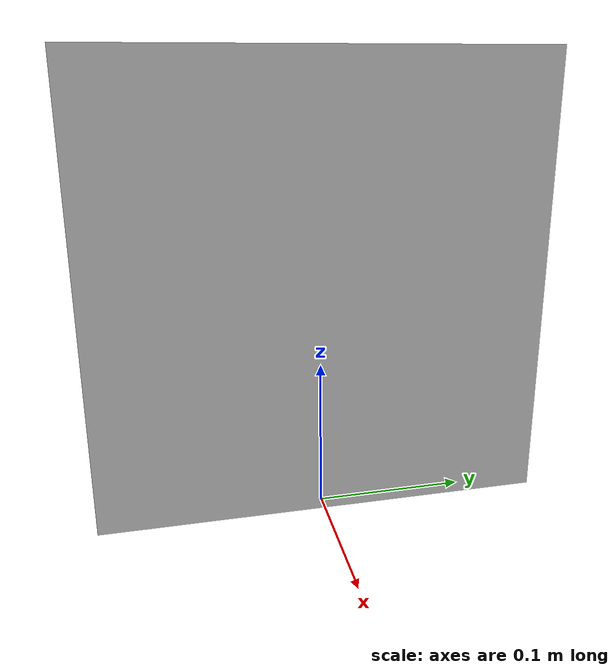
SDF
<?xml version="1.0" ?>
<sdf version="1.6">
  <model name="qr_information_desk">
    <static>true</static>
    <link name="link">
      <pose>0 0 0.15 0 0 0</pose>
      <collision name="collision">
        <geometry>
          <box>
            <size>0.02 0.3 0.3</size>
          </box>
        </geometry>
      </collision>
      <visual name="visual">
        <pose>0.011 0 0 0 0 0</pose>
        <geometry>
          <box>
            <size>0.001 0.3 0.3</size>
          </box>
        </geometry>
        <material>
          <script>
            <uri>model://qr_information_desk/materials/scripts</uri>
            <uri>model://qr_information_desk/materials/textures</uri>
            <name>QR_InformationDesk/Material</name>
          </script>
        </material>
      </visual>
    </link>
  </model>
</sdf>
